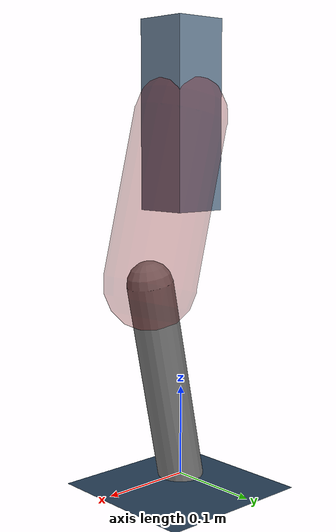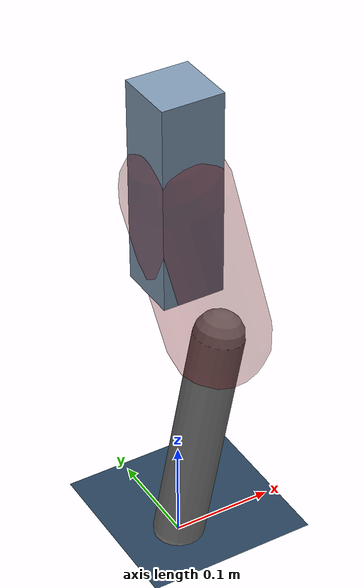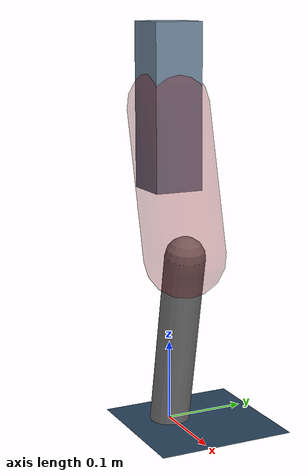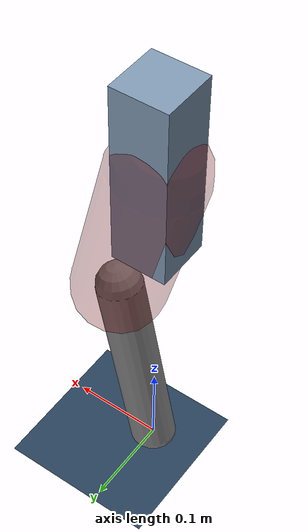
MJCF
<mujoco model="Hopper2D">
	<compiler inertiafromgeom="true" angle="radian" />
	<option timestep="0.001" integrator="implicit" cone="elliptic" solver="Newton" tolerance="1e-10" />

	<default>
		<geom contype="1" conaffinity="1" condim="3" friction="2 0.005 0.0001" solref="0.005 1" />
		<joint limited="true" damping="0.1" />
	</default>

	<asset>
		<texture name="skybox" type="skybox" builtin="gradient" rgb1=".4 .6 .8" rgb2="0 0 0" width="800" height="800" />
		<texture name="grid" type="2d" builtin="checker" rgb1=".1 .2 .3" rgb2=".2 .3 .4" width="300" height="300" mark="edge" markrgb=".2 .3 .4" />
		<material name="ground" texture="grid" texrepeat="1 1" texuniform="true" reflectance="0.1" />
		<material name="leg" rgba="0.5 0.6 0.7 1" />
	</asset>

	<worldbody>

		<geom name="floor" type="plane" size="5 5 0.25" material="ground" />

		<light directional="false" diffuse="0.8 0.8 0.8" specular="0.3 0.3 0.3" pos="0 0 2" dir="0 0 -1" />
		<light mode="targetbodycom" target="base" directional="false" diffuse="0.8 0.8 0.8" specular="0.3 0.3 0.3" pos="0 0 2" dir="0 0 -1" />

		<camera name="fixed" pos="0 -2 1" xyaxes="1 0 0 0 0 1" />
		<camera name="tracking" mode="trackcom" pos="0 -3 1" />

		<body name="root" pos="0 0 0.3954355324907169">
			<joint name="slide_x" type="slide" axis="1 0 0" range="-100 100" />
			<joint name="slide_z" type="slide" axis="0 0 1" range="0 10" />

			<body name="base" pos="0 0 0">
				<geom name="torso" type="box" size="0.03 0.03 0.1" mass="3.0469999999999997" material="leg" />

				<body name="link1" pos="0 0 0" euler="0 1.323263505242983 0">
					<joint type="hinge" axis="0 -1 0" pos="0 0 0" name="hinge1" limited="true" range="-3.14 3.14" stiffness="0" damping="0.1" />
					<geom name="thigh" type="capsule" fromto="0 0 0 0.1815792909640776 0 0" size="0.05" rgba="0.5 0 0 0.3" mass="0.684348227410194" />

					<body name="link2" pos="0.1815792909640776 0 0" euler="0 0.4476051480554742 0">
						<joint type="hinge" axis="0 -1 0" pos="0 0 0" name="hinge2" limited="true" range="-3.14 3.14" stiffness="0" damping="0.1" />
						<geom name="shank" type="capsule" fromto="0 0 0 0.2238562415266393 0 0" size="0.025" mass="0.4208849932213114" />

					</body>
				</body>
			</body>
		</body>
	</worldbody>

	<actuator>
		<motor name="torque1" joint="hinge1" ctrlrange="-14.448513773036229 14.448513773036229" ctrllimited="true" gear="1" />
		<motor name="torque2" joint="hinge2" ctrlrange="-282.3389016200784 282.3389016200784" ctrllimited="true" gear="1" />
	</actuator>
</mujoco>
